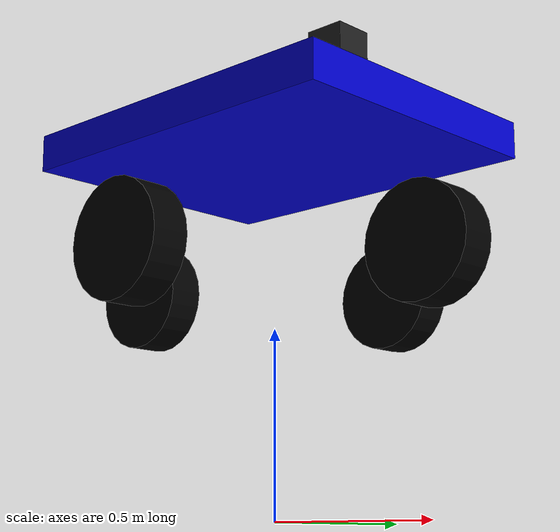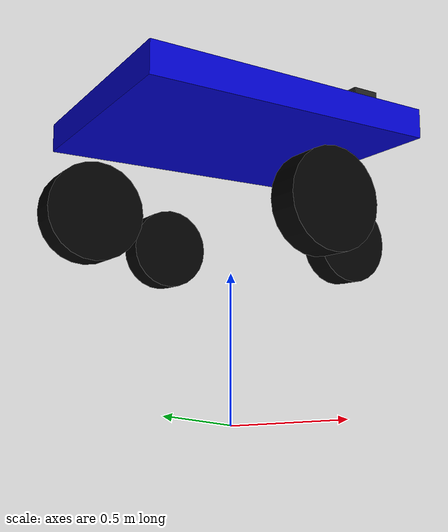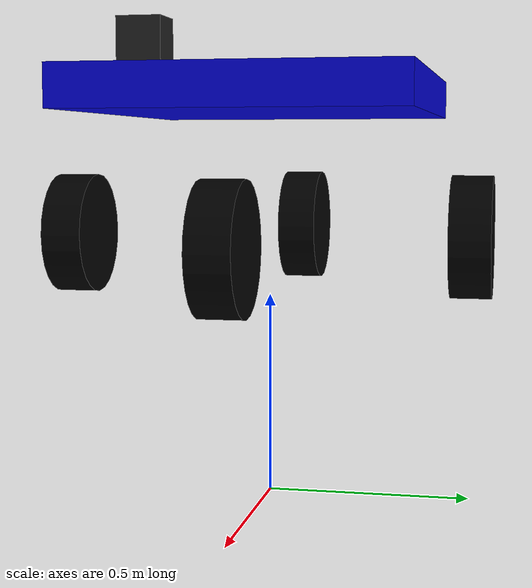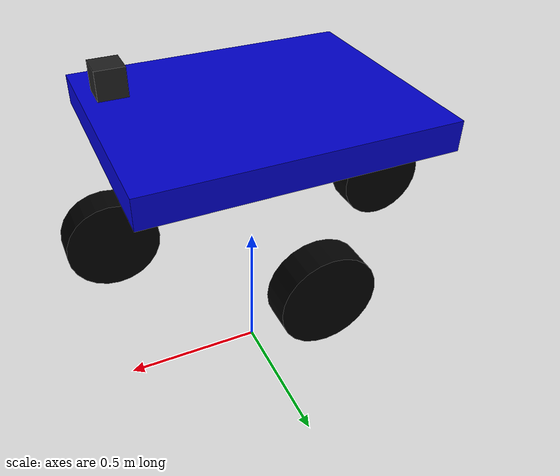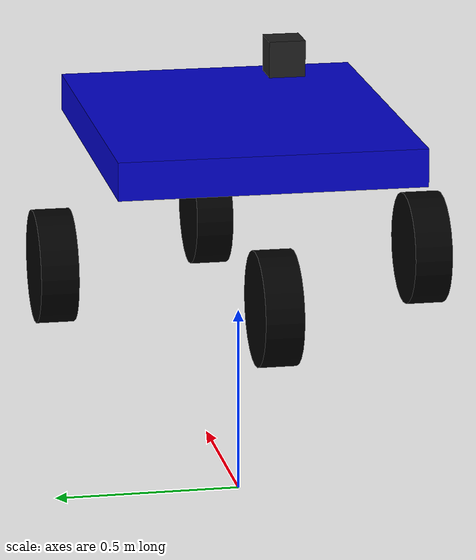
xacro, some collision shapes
<?xml version="1.0"?>
<robot name="R2D2_base_amcl" xmlns:xacro="http://ros.org/wiki/xacro">
<material name="blue">
  <color rgba="0 0 0.8 1"/>
</material>

<material name="black">
  <color rgba="0 0 0 1"/>
</material>

<material name="white">
  <color rgba="1 1 1 1"/>
</material>
<!-- the vertical offset dist bet the car and the ground -->
<xacro:property name="up_z" value="0.5" />
<!-- the vertical offset dist bet the laser and car body -->
<xacro:property name="up_laser" value="0.1" />
<!-- the horizontal offset in x dir dist bet the laser and car center -->
<xacro:property name="x_offset_laser" value="0.4" />
<!-- the vertical offset dist bet the driving wheel and car body -->
<!-- the horizontal offset in y dir dist bet the laser and car center -->
<xacro:property name="y_offset_laser" value="-0.2" />
<!-- laser rotate angle in yaw -->
<xacro:property name="yaw_laser" value="-1.57" />
<xacro:property name="down_wheel" value="0.35" />
<!-- the horizontal offset dist bet the driven wheel and car body -->
<xacro:property name="offset_wheel" value="0.5" />
<!-- the horizontal offset dist bet the laser and car body -->
<xacro:property name="offset_laser" value="0.4" />

<!-- dist bet left and right wheel -->
<xacro:property name="wheel_separation" value="1.0" />
<xacro:property name="wheel_radius" value="0.15" />

<xacro:property name="car_body_length" value="1" />
<xacro:property name="car_body_width" value="0.8" />
<xacro:property name="car_body_height" value="0.1" />

  <xacro:macro name="default_inertial" params="mass">
    <inertial>
      <mass value="${mass}" />
      <inertia ixx="1.0" ixy="0.0" ixz="0.0" iyy="1.0" iyz="0.0" izz="1.0" />
    </inertial>
  </xacro:macro>

<link name="base_footprint">
</link>

<link name="base_link">
    <visual>
      <geometry>
         <box size="${car_body_length} ${car_body_width} ${car_body_height}"/>
      </geometry>
     <origin xyz="0 0 ${up_z}" rpy="0 0 0"/>
     <material name="blue"/>
    </visual>
    <collision>
      <geometry>
        <box size="${car_body_length} ${car_body_width} ${car_body_height}"/>
      </geometry>
     <origin xyz="0 0 ${up_z}" rpy="0 0 0"/>
    </collision>
    <xacro:default_inertial mass="50"/>
  </link>

  <link name="left_front_wheel">
    <visual>
      <geometry>
        <cylinder length="0.1" radius="${wheel_radius}"/>
      </geometry>
      <origin xyz="0 0 0" rpy="1.57 0 0"/>
      <material name="black"/>
    </visual>
    <collision>
      <geometry>
        <cylinder length="0.1" radius="${wheel_radius}"/>
      </geometry>
      <origin xyz="0 0 0" rpy="1.57 0 0"/>
    </collision>
    <xacro:default_inertial mass="1"/>
  </link>

<link name="right_front_wheel">
    <visual>
      <geometry>
        <cylinder length="0.1" radius="${wheel_radius}"/>
      </geometry>
      <origin xyz="0 0 0" rpy="1.57 0 0"/>
      <material name="black"/>
    </visual>
    <collision>
      <geometry>
        <cylinder length="0.1" radius="${wheel_radius}"/>
      </geometry>
      <origin xyz="0 0 0" rpy="1.57 0 0"/>
    </collision>
    <xacro:default_inertial mass="1"/>
  </link>

<link name="front_wheel">
    <visual>
      <geometry>
        <cylinder length="0.1" radius="${wheel_radius}"/>
      </geometry>
      <origin xyz="0 0 0" rpy="1.57 0 0"/>
      <material name="black"/>
    </visual>
    <collision>
      <geometry>
        <cylinder length="0.1" radius="${wheel_radius}"/>
      </geometry>
      <origin xyz="0 0 0" rpy="1.57 0 0"/>
    </collision>
    <xacro:default_inertial mass="0.01"/>
  </link>

<link name="rear_wheel">
    <visual>
      <geometry>
        <cylinder length="0.1" radius="${wheel_radius}"/>
      </geometry>
      <origin xyz="0 0 0" rpy="1.57 0 0"/>
      <material name="black"/>
    </visual>
    <collision>
      <geometry>
        <cylinder length="0.1" radius="${wheel_radius}"/>
      </geometry>
      <origin xyz="0 0 0" rpy="1.57 0 0"/>
    </collision>
    <xacro:default_inertial mass="0.01"/>
  </link>

  <!-- published int launch file -->
  <!-- if published in here the tf time will too fast than other link ,it will display error in rviz-->
  <joint name="base_footprint_to_base_link" type="fixed">
    <parent link="base_footprint"/>
    <child link="base_link"/>
    <origin xyz="0 0 0.5" rpy="0 0 0"/>
    <axis xyz="0 1 0"/>
  </joint>

  <joint name="left_front_wheel_joint" type="continuous">
    <parent link="base_link"/>
    <child link="left_front_wheel"/>
    <origin xyz="-0.0 ${wheel_separation/2} ${up_z-down_wheel}" rpy="0 0 0"/>
    <axis xyz="0 1 0"/>
  </joint>

  <joint name="right_front_wheel_joint" type="continuous">
    <parent link="base_link"/>
    <child link="right_front_wheel"/>
    <origin xyz="-0.0 ${-wheel_separation/2} ${up_z-down_wheel}" rpy="0 0 0" />
    <axis xyz="0 1 0"/>
  </joint>

  <joint name="front_wheel_joint" type="continuous">
    <parent link="base_link"/>
    <child link="front_wheel"/>
    <origin xyz="${offset_wheel} 0 ${up_z-down_wheel}" rpy="0 0 0" />
    <axis xyz="0 1 0"/>
  </joint>

  <joint name="rear_wheel_joint" type="continuous">
    <parent link="base_link"/>
    <child link="rear_wheel"/>
    <origin xyz="${-offset_wheel} 0 ${up_z-down_wheel}" rpy="0 0 0" />
    <axis xyz="0 1 0"/>
  </joint>

  <xacro:include filename="$(find pf_localization)/urdf/hokuyolaser_base.xacro" />
  <xacro:hokuyolaser parent_link="base_link">
    <origin xyz="${x_offset_laser} ${y_offset_laser} ${up_z+up_laser}" rpy="0 0 ${yaw_laser}" />
  </xacro:hokuyolaser>

<transmission name="left_front_wheel_trans">
  <type>transmission_interface/SimpleTransmission</type>
  <actuator name="$left_front_wheel_motor">
    <mechanicalReduction>1</mechanicalReduction>
  </actuator>
  <joint name="left_front_wheel_joint">
   <hardwareInterface>VelocityJointInterface</hardwareInterface>
  </joint>
</transmission>

<transmission name="right_front_wheel_trans">
  <type>transmission_interface/SimpleTransmission</type>
  <actuator name="$right_front_wheel_motor">
    <mechanicalReduction>1</mechanicalReduction>
  </actuator>
  <joint name="right_front_wheel_joint">
   <hardwareInterface>VelocityJointInterface</hardwareInterface>
  </joint>
</transmission>

<transmission name="front_wheel_trans">
  <type>transmission_interface/SimpleTransmission</type>
  <actuator name="$front_wheel_motor">
    <mechanicalReduction>1</mechanicalReduction>
  </actuator>
  <joint name="front_wheel_joint">
   <hardwareInterface>VelocityJointInterface</hardwareInterface>
  </joint>
</transmission>

<transmission name="rear_wheel_trans">
  <type>transmission_interface/SimpleTransmission</type>
  <actuator name="$rear_wheel_motor">
    <mechanicalReduction>1</mechanicalReduction>
  </actuator>
  <joint name="rear_wheel_joint">
   <hardwareInterface>VelocityJointInterface</hardwareInterface>
  </joint>
</transmission>

 <gazebo>
  <plugin name="gazebo_ros_control" filename="libgazebo_ros_control.so">
  <robotNamespace>/</robotNamespace>
  </plugin>
</gazebo>

</robot>

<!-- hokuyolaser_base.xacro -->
<robot xmlns:xacro="http://www.ros.org/wiki/xacro" name="hokuyolaser">

  <xacro:property name="laser_x" value="0.1" />
  <xacro:property name="laser_y" value="0.1" />
  <xacro:property name="laser_z" value="0.1" />

  <xacro:macro name="hokuyolaser" params="parent_link *joint_origin" >
    <!-- Hokuyo Laser -->
    <link name="hokuyo_link">

      <collision>
        <origin xyz="0 0 0" rpy="0 0 0"/>
        <geometry>
          <box size="${laser_x} ${laser_y} ${laser_z}"/>
        </geometry>
      </collision>

      <visual>
        <origin xyz="0 0 0" rpy="0 0 0"/>
        <geometry>
          <mesh filename="package://rrbot_description/meshes/hokuyo.dae"/>
        </geometry>
      </visual>

      <inertial>
        <mass value="1e-5" />
        <origin xyz="0 0 0" rpy="0 0 0"/>
        <inertia ixx="1e-6" ixy="0" ixz="0" iyy="1e-6" iyz="0" izz="1e-6" />
      </inertial>
    </link>

  <!-- hokuyo -->
    <gazebo reference="hokuyo_link">
      <material>Gazebo/Black</material>
      <sensor type="gpu_ray" name="head_hokuyo_sensor">
	  <!--sensor type="ray" name="head_hokuyo_sensor"-->
        <pose>0 0 0 0 0 0</pose>
        <!--visualize the scan  ray line chq -->
        <visualize>true</visualize>
        <update_rate>30</update_rate>
        <ray>
          <scan>
            <horizontal>
                <!-- the real angle resolution = (max_angle -min_angle)/samples -->
              <samples>6300</samples>
              <!-- resolution set to 1 forcely-->
              <resolution>1</resolution>
              <min_angle>-3.1415926</min_angle>
              <max_angle>3.1415926</max_angle>
            </horizontal>
          </scan>
          <range>
            <min>0.001</min>
            <max>6.0</max>
            <resolution>0.001</resolution>
          </range>
          <noise>
            <type>gaussian</type>
            <mean>0.0</mean>
            <stddev>0.01</stddev>
          </noise>
        </ray>
        <plugin name="gazebo_ros_head_hokuyo_controller" filename="libgazebo_ros_gpu_laser.so">
		<!--plugin name="gazebo_ros_head_hokuyo_controller" filename="libgazebo_ros_laser.so"-->
          <!-- specify the publishing scan topic name  -->
          <topicName>scan</topicName>
          <frameName>hokuyo_link</frameName>
        </plugin>
      </sensor>
    </gazebo>

    <joint name="lase_joint" type="fixed">
      <parent link="${parent_link}" />
      <child link="hokuyo_link" />
      <axis xyz="0 1 0" />
      <!-- origin cord spcified  outsidely -->
      <xacro:insert_block name="joint_origin"/>
    </joint>

  </xacro:macro>

</robot>
